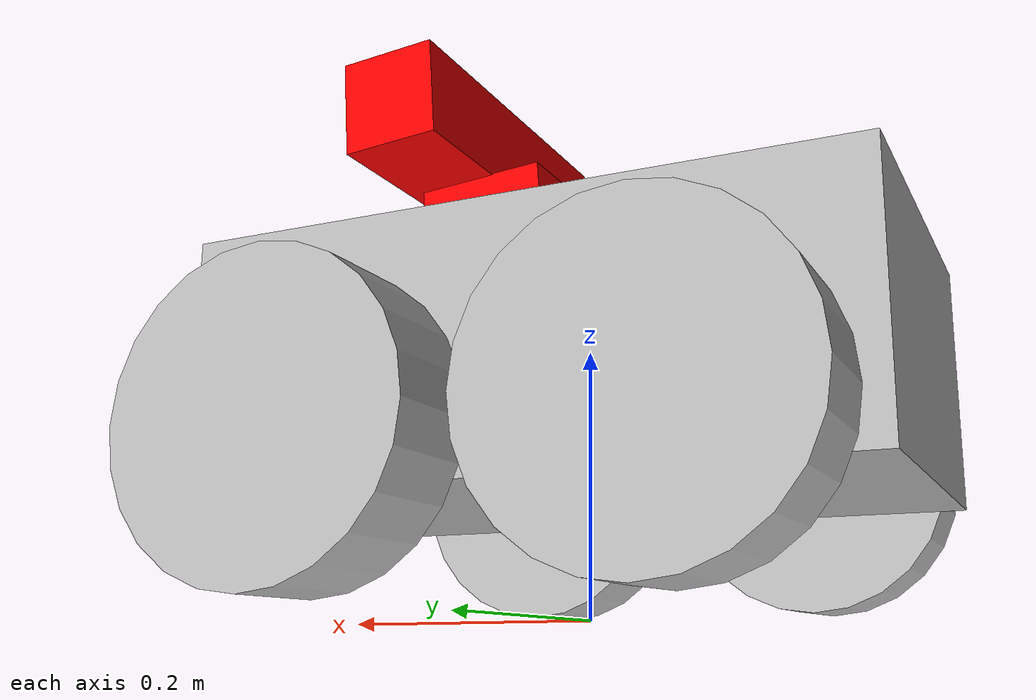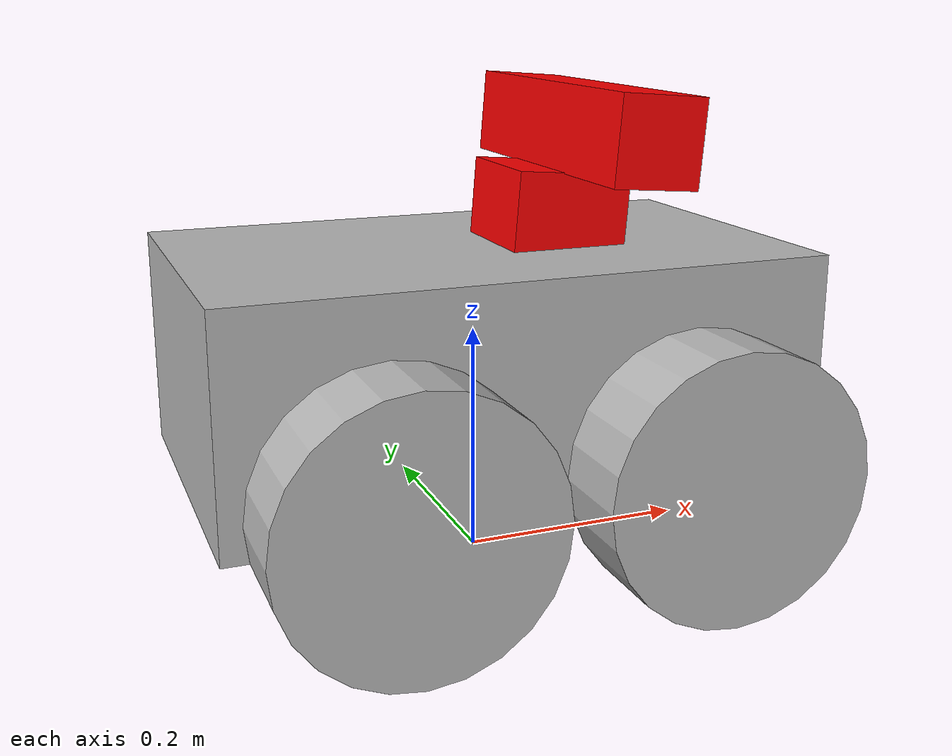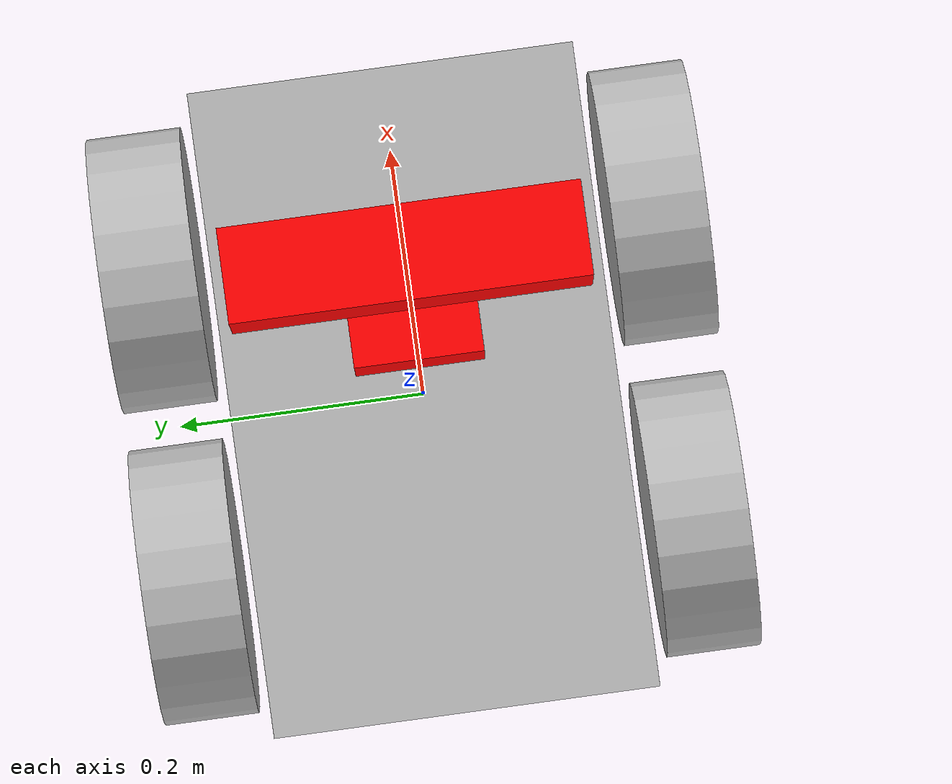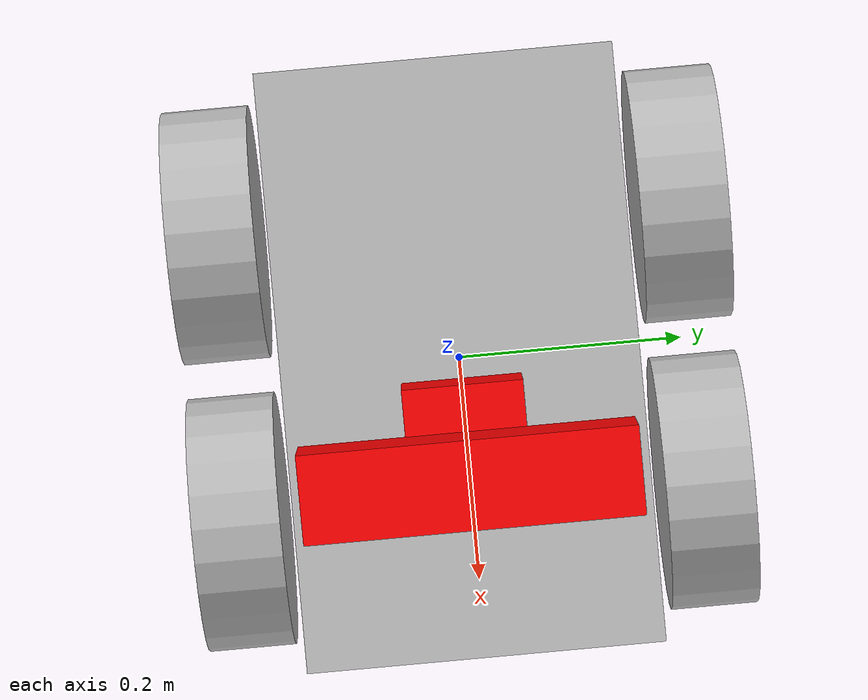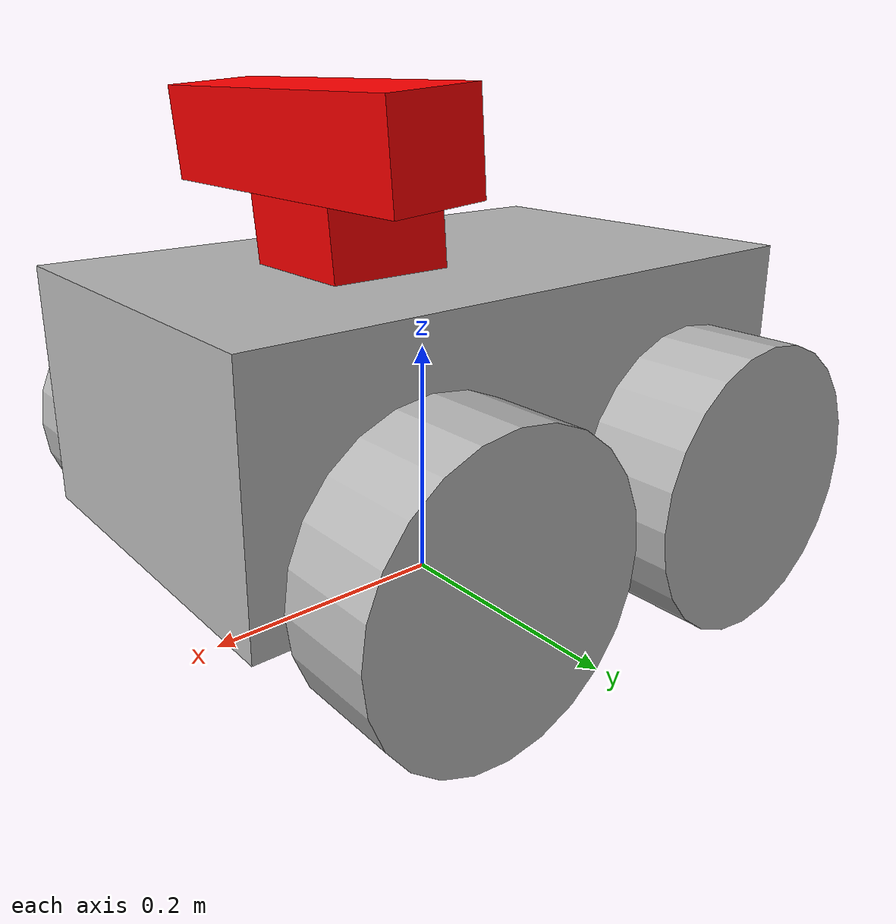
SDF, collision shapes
<?xml version="1.0" ?>
<sdf version="1.5">
  <model name="robot">
    <pose>0 0 0.180 0 0 0</pose>
    <static>false</static>
    <link name="base_link">
      <inertial>
        <mass>14.0</mass>
        <inertia>
          <ixx>0.147116667</ixx>
          <ixy>0.0</ixy>
          <ixz>0.0</ixz>
          <iyy>0.334951167</iyy>
          <iyz>0.0</iyz>
          <izz>0.3978345</izz>
        </inertia>
      </inertial>
      <collision name="collision1">
        <geometry>
          <box>
            <size>0.501 0.300 0.19</size>
          </box>
        </geometry>
      </collision>
      <visual name="visual1">
        <geometry>
          <mesh>
            <uri>model://chassis.dae</uri>
          </mesh>
        </geometry>
      </visual>
    </link>
    <link name="right_front_wheel">
      <pose>0.125 -0.201 -0.06 1.5707 0 0</pose>

      <inertial>
        <mass>1.5</mass>
        <inertia>
          <ixx>0.005240625</ixx>
          <iyy>0.005240625</iyy>
          <izz>0.009075</izz>
          <ixy>0</ixy>
          <ixz>0</ixz>
          <iyz>0</iyz>
        </inertia>
      </inertial>

      <collision name="collision">
        <geometry>
          <cylinder>
            <radius>0.110</radius>
            <length>0.075</length>
          </cylinder>
        </geometry>
        <surface>
          <friction>
            <ode>
              <mu>1</mu>
              <mu2>1</mu2>
            </ode>
          </friction>
        </surface>
      </collision>
      <visual name="visual">
        <geometry>
          <mesh>
            <uri>model://wheel.dae</uri>
          </mesh>
        </geometry>
      </visual>
    </link>
    <link name="left_front_wheel">
      <pose>0.125 0.201 -0.06 1.5707 0 0</pose>

      <inertial>
        <mass>1.5</mass>
        <inertia>
          <ixx>0.005240625</ixx>
          <iyy>0.005240625</iyy>
          <izz>0.009075</izz>
          <ixy>0</ixy>
          <ixz>0</ixz>
          <iyz>0</iyz>
        </inertia>
      </inertial>

      <collision name="collision">
        <geometry>
          <cylinder>
            <radius>0.110</radius>
            <length>0.075</length>
          </cylinder>
        </geometry>
        <surface>
          <friction>
            <ode>
              <mu>1</mu>
              <mu2>1</mu2>
            </ode>
          </friction>
        </surface>
      </collision>
      <visual name="visual">
        <geometry>
          <mesh>
            <uri>model://wheel.dae</uri>
          </mesh>
        </geometry>
      </visual>
    </link>
    <link name="right_rear_wheel">
      <pose>-0.125 -0.201 -0.06 1.5707 0 0</pose>

      <inertial>
        <mass>1.5</mass>
        <inertia>
          <ixx>0.005240625</ixx>
          <iyy>0.005240625</iyy>
          <izz>0.009075</izz>
          <ixy>0</ixy>
          <ixz>0</ixz>
          <iyz>0</iyz>
        </inertia>
      </inertial>

      <collision name="collision">
        <geometry>
          <cylinder>
            <radius>0.110</radius>
            <length>0.075</length>
          </cylinder>
        </geometry>
        <surface>
          <friction>
            <ode>
              <mu>1</mu>
              <mu2>1</mu2>
            </ode>
          </friction>
        </surface>
      </collision>
      <visual name="visual">
        <geometry>
          <mesh>
            <uri>model://wheel.dae</uri>
          </mesh>
        </geometry>
      </visual>
    </link>
    <link name="left_rear_wheel">
      <pose>-0.125 0.201 -0.06 1.5707 0 0</pose>

      <inertial>
        <mass>1.5</mass>
        <inertia>
          <ixx>0.005240625</ixx>
          <iyy>0.005240625</iyy>
          <izz>0.009075</izz>
          <ixy>0</ixy>
          <ixz>0</ixz>
          <iyz>0</iyz>
        </inertia>
      </inertial>

      <collision name="collision">
        <geometry>
          <cylinder>
            <radius>0.110</radius>
            <length>0.075</length>
          </cylinder>
        </geometry>
        <surface>
          <friction>
            <ode>
              <mu>1</mu>
              <mu2>1</mu2>
            </ode>
          </friction>
        </surface>
      </collision>
      <visual name="visual">
        <geometry>
          <mesh>
            <uri>model://wheel.dae</uri>
          </mesh>
        </geometry>
      </visual>
    </link>
    <joint type="revolute" name="right_front">
      <pose>0 0 0 0 0 0</pose>
      <child>right_front_wheel</child>
      <parent>base_link</parent>
      <axis>
        <xyz>0 1 0</xyz>
        <use_parent_model_frame>true</use_parent_model_frame>
      </axis>
    </joint>
    <joint type="revolute" name="right_rear">
      <pose>0 0 0 0 0 0</pose>
      <child>right_rear_wheel</child>
      <parent>base_link</parent>
      <axis>
        <xyz>0 1 0</xyz>
        <use_parent_model_frame>true</use_parent_model_frame>
      </axis>
    </joint>
    <joint type="revolute" name="left_front">
      <pose>0 0 0 0 0 0</pose>
      <child>left_front_wheel</child>
      <parent>base_link</parent>
      <axis>
        <xyz>0 1 0</xyz>
        <use_parent_model_frame>true</use_parent_model_frame>
      </axis>
    </joint>
    <joint type="revolute" name="left_rear">
      <pose>0 0 0 0 0 0</pose>
      <child>left_rear_wheel</child>
      <parent>base_link</parent>
      <axis>
        <xyz>0 1 0</xyz>
        <use_parent_model_frame>true</use_parent_model_frame>
      </axis>
    </joint>

<!-- DEPTH CAMERA-->
    <link name="camera_link">
      <pose>0.1 0 0.19 0 0.08 0</pose>
      <inertial>
        <mass>0.1</mass>
      </inertial>
      <collision name="collision-box">
        <pose>-0.025 0 -0.07 0 0 0</pose>
        <geometry>
          <box>
            <size>0.1 0.1 0.07</size>
          </box>
        </geometry>
      </collision>
      <visual name="visual-box">
        <pose>-0.025 0 -0.07 0 0 0</pose>
        <geometry>
          <box>
            <size>0.1 0.1 0.07</size>
          </box>
        </geometry>
        <material>
          <ambient>1.0 0.0 0.0 1</ambient>
          <diffuse>1.0 0.0 0.0 1</diffuse>
          <specular>0.1 0.1 0.1 1</specular>
          <emissive>0 0 0 0</emissive>
        </material>
      </visual>

      <collision name="collision">
        <geometry>
          <box>
            <size>0.073000 0.276000 0.072000</size>
          </box>
        </geometry>
      </collision>
      <visual name="visual">
        <geometry>
          <mesh>
            <uri>model://kinect.dae</uri>
          </mesh>
        </geometry>
      </visual>
      <sensor name="camera" type="depth">
        <update_rate>30</update_rate>
	<visualize>false</visualize>
        <camera>
          <horizontal_fov>1.047198</horizontal_fov>
          <image>
            <width>640</width>
            <height>480</height>
            <format>R8G8B8</format>
          </image>
          <clip>
            <near>0.4</near>
            <far>100</far>
          </clip>
        </camera>
	<plugin name="camera_plugin" filename="libgazebo_ros_openni_kinect.so">
          <alwaysOn>true</alwaysOn>
	  <updateRate>0.0</updateRate>
	  <baseline>0.2</baseline>
          <cameraName>camera</cameraName>
          <imageTopicName>rgb/image_raw</imageTopicName>
          <cameraInfoTopicName>rgb/camera_info</cameraInfoTopicName>
          <depthImageTopicName>depth/image_raw</depthImageTopicName>
          <depthImageCameraInfoTopicName>depth/camera_info</depthImageCameraInfoTopicName>
          <pointCloudTopicName>depth/points</pointCloudTopicName>
          <frameName>depth_link</frameName>
          <pointCloudCutoff>0.25</pointCloudCutoff>
          <pointCloudCutoffMax>5.0</pointCloudCutoffMax>
	  <hackBaseline>0.07</hackBaseline>
          <distortionK1>0</distortionK1>
          <distortionK2>0</distortionK2>
          <distortionK3>0</distortionK3>
          <distortionT1>0</distortionT1>
          <distortionT2>0</distortionT2>
          <CxPrime>0</CxPrime>
          <Cx>0</Cx>
          <Cy>0</Cy>
          <focalLength>0</focalLength>
        </plugin>
      </sensor>
    </link>

    <joint name="camera_joint" type="fixed">
      <parent>base_link</parent>
      <child>camera_link</child>
      <pose>0 0 0 0 0 0</pose>
    </joint>

    <joint name="depth_joint" type="fixed">
      <parent>camera_link</parent>
      <child>depth_link</child>
      <pose>0 0 0 -1.58 0 -1.58</pose>
    </joint>

    <!-- CONTROLLERS -->
    <plugin name="skid_steer_drive_controller"
            filename="libgazebo_ros_skid_steer_drive.so">
      <updateRate>20.0</updateRate>
      <leftFrontJoint>left_front</leftFrontJoint>
      <rightFrontJoint>right_front</rightFrontJoint>
      <leftRearJoint>left_rear</leftRearJoint>
      <rightRearJoint>right_rear</rightRearJoint>
      <wheelSeparation>0.4</wheelSeparation>
      <wheelDiameter>0.215</wheelDiameter>
      <robotBaseFrame>base_link</robotBaseFrame>
      <torque>200</torque>
      <commandTopic>cmd_vel</commandTopic>
      <odometryTopic>odom</odometryTopic>
      <odometryFrame>odom</odometryFrame>
      <broadcastTF>true</broadcastTF>
    </plugin>

  </model>
</sdf>
